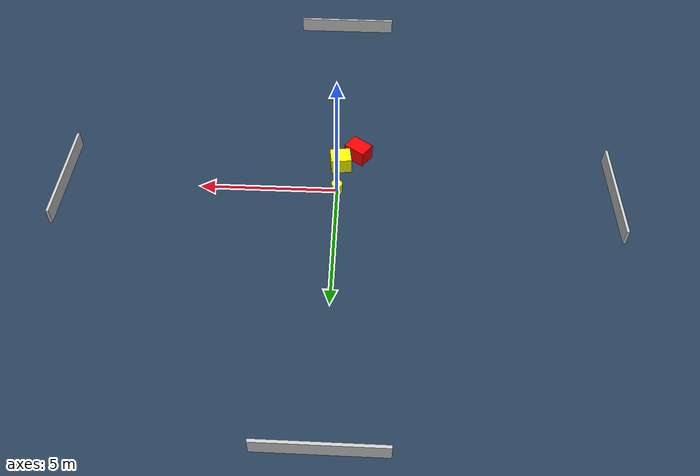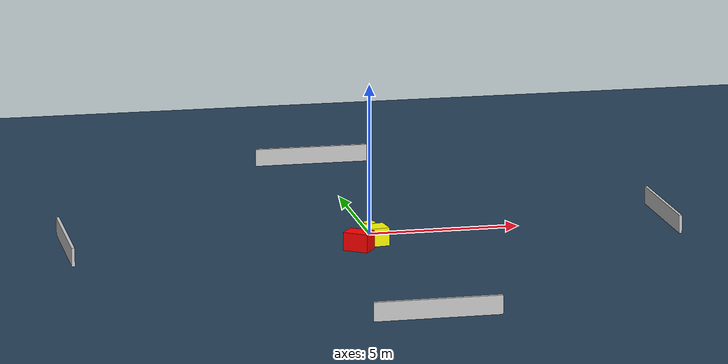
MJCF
<?xml version="1.0" ?>
<mujoco model="generated_environment">
  <option timestep="0.01" integrator="RK4" cone="elliptic"/>
  <default>
    <geom density="1"/>
  </default>
  <asset>
    <texture builtin="gradient" height="3072" name="skybox" rgb1="0.3 0.5 0.7" rgb2="0 0 0" type="skybox" width="512"/>
    <texture builtin="checker" height="300" name="groundplane" rgb1="0.2 0.3 0.4" rgb2="0.1 0.2 0.3" type="2d" width="300"/>
    <material name="groundplane" reflectance="0.2" texrepeat="5 5" texture="groundplane"/>
  </asset>
  <worldbody>
    <light dir="0 0 -1" directional="true" pos="0 0 1.5"/>
    <geom condim="3" friction="0.5 0.005 0.001" material="groundplane" name="floor" pos="0 0 0" size="0 0 0.05" type="plane"/>
    <body name="walls">
      <geom name="wall_1" condim="4" pos="-10.0 0.0 0.3" rgba="0.800000011920929 0.800000011920929 0.800000011920929 1.0" size="0.05 2.0 0.3" type="box"/>
      <geom name="wall_2" condim="4" pos="10.0 0.0 0.3" rgba="0.800000011920929 0.800000011920929 0.800000011920929 1.0" size="0.05 2.0 0.3" type="box"/>
      <geom name="wall_3" condim="4" pos="0.0 -10.0 0.3" rgba="0.800000011920929 0.800000011920929 0.800000011920929 1.0" size="2.0 0.05 0.3" type="box"/>
      <geom name="wall_4" condim="4" pos="0.0 10.0 0.3" rgba="0.800000011920929 0.800000011920929 0.800000011920929 1.0" size="2.0 0.05 0.3" type="box"/>
    </body>
    <body name="robot">
      <joint name="joint_x" type="slide" pos="0 0 0" axis="1 0 0"/>
      <joint name="joint_y" type="slide" pos="0 0 0" axis="0 1 0"/>
      <geom name="robot" type="cylinder" pos="0.0 0.0 0.2" size="0.2 0.2 0.0" mass="5.0" friction="1.0 0.005 0.0001" condim="4" rgba="1.0 1.0 0.0 1.0"/>
    </body>
    <body name="obstacle_1_movable">
      <geom name="obstacle_1_movable" condim="4" pos="-0.08089128045209174 -1.2823993179822728 0.3" euler="0 0 277.7289631611328" friction="0.0 0.005 0.001" rgba="1.0 1.0 0.0 1.0" size="0.3334774955399952 0.3765336437646315 0.3" type="box" mass="0.1"/>
      <joint type="free"/>
    </body>
    <body name="obstacle_2_static">
      <geom name="obstacle_2_static" condim="4" pos="-0.7336092427172133 -1.8291677624344742 0.3" euler="0 0 234.2573037376184" friction="0.0 0.005 0.001" rgba="1.0 0.0 0.0 1.0" size="0.31112346602433927 0.4228680433625723 0.3" type="box"/>
    </body>
  </worldbody>
  <actuator>
    <motor name="actuator_x" joint="joint_x" gear="1" ctrlrange="-1 1"/>
    <motor name="actuator_y" joint="joint_y" gear="1" ctrlrange="-1 1"/>
  </actuator>
</mujoco>
